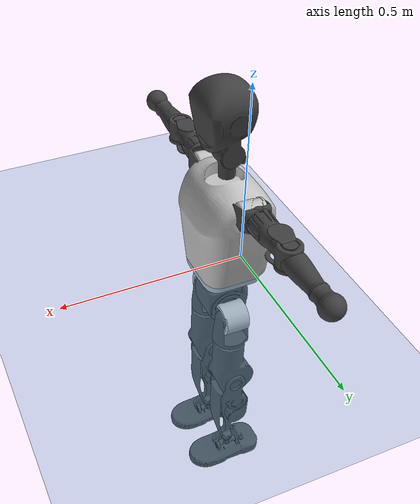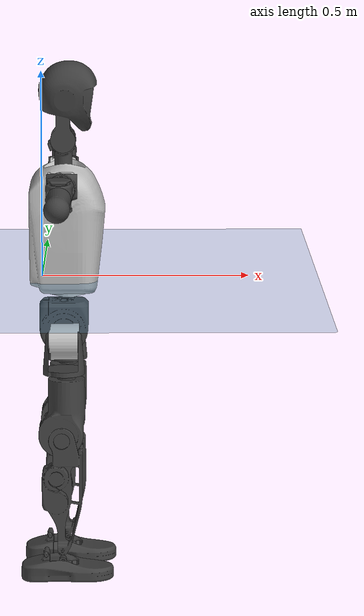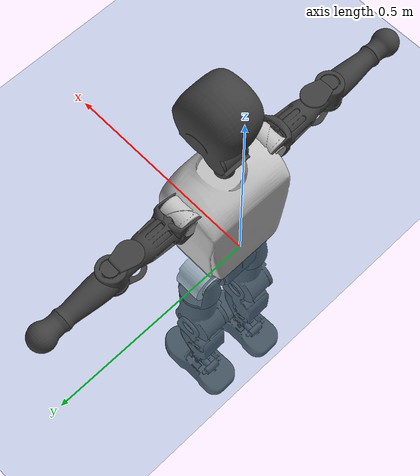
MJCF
<mujoco model="T1">
  <compiler angle="radian" assetdir="assets" balanceinertia="true" inertiafromgeom="false"/>

  <option timestep="0.005" density="1.2" viscosity="2e-05"/>

  <size nkey="1"/>

  <visual>
    <quality shadowsize="8192"/>
    <map shadowclip="0.5"/>
  </visual>

  <default>
    <default class="/">
      <joint armature="0.01" damping="0.01" frictionloss="0.1"/>
      <geom contype="0" conaffinity="0" group="1" solref="-1000 -80"/>
      <site size="0.01 0.005 0.005" group="5"/>
      <general forcelimited="true" biastype="affine" gainprm="25" biasprm="0 -25 -0.6"/>
      <default class="t1">
        <geom rgba="0.25 0.25 0.25 1"/>
        <default class="visual">
          <geom type="mesh" group="2"/>
        </default>
        <default class="collision">
          <geom group="3"/>
        </default>
        <default class="foot">
          <geom size="0.1115 0.05 0.015" type="box" condim="6" group="4" priority="1" solimp="0.015 1 0.015"/>
        </default>
        <default class="reward_collision_sphere">
          <geom group="5" rgba="1 0 0 1"/>
        </default>
      </default>
    </default>
  </default>

  <asset>
    <texture type="skybox" colorspace="auto" name="//unnamed_texture_0" builtin="gradient" rgb1="0.95 0.95 0.95" rgb2="0.95 0.95 0.95" width="100" height="600"/>
    <texture type="2d" colorspace="auto" name="texplane" builtin="checker" rgb1="0.345 0.575 0.748" rgb2="0.345 0.575 0.748" markrgb="1 1 1" width="512" height="512"/>
    <material name="MatPlane" class="/" texture="texplane" texuniform="true" texrepeat="2 2" specular="0.9"/>
    <mesh name="Trunk" class="/" file="Trunk.stl"/>
    <mesh name="H1" class="/" file="H1.stl"/>
    <mesh name="H2" class="/" file="H2.stl"/>
    <mesh name="AL1" class="/" file="AL1.stl"/>
    <mesh name="AL2" class="/" file="AL2.stl"/>
    <mesh name="AL3" class="/" file="AL3.stl"/>
    <mesh name="left_hand_link" class="/" file="left_hand_link.stl"/>
    <mesh name="AR1" class="/" file="AR1.stl"/>
    <mesh name="AR2" class="/" file="AR2.stl"/>
    <mesh name="AR3" class="/" file="AR3.stl"/>
    <mesh name="right_hand_link" class="/" file="right_hand_link.stl"/>
    <mesh name="Waist" class="/" file="Waist.stl"/>
    <mesh name="Hip_Pitch_Left" class="/" file="Hip_Pitch_Left.stl"/>
    <mesh name="Hip_Roll_Left" class="/" file="Hip_Roll_Left.stl"/>
    <mesh name="Hip_Yaw_Left" class="/" file="Hip_Yaw_Left.stl"/>
    <mesh name="Shank_Left" class="/" file="Shank_Left.stl"/>
    <mesh name="Ankle_Cross_Left" class="/" file="Ankle_Cross_Left.stl"/>
    <mesh name="left_foot_link" class="/" file="left_foot_link.stl"/>
    <mesh name="Hip_Pitch_Right" class="/" file="Hip_Pitch_Right.stl"/>
    <mesh name="Hip_Roll_Right" class="/" file="Hip_Roll_Right.stl"/>
    <mesh name="Hip_Yaw_Right" class="/" file="Hip_Yaw_Right.stl"/>
    <mesh name="Shank_Right" class="/" file="Shank_Right.stl"/>
    <mesh name="Ankle_Cross_Right" class="/" file="Ankle_Cross_Right.stl"/>
    <mesh name="right_foot_link" class="/" file="right_foot_link.stl"/>
  </asset>

  <worldbody>
    <geom name="floor" class="/" size="100 100 0.125" type="plane" group="0" material="MatPlane"/>
    <light name="toplight_shadow" class="/" pos="0 0 5" dir="0.0990148 0.0990148 -0.990148" type="directional" ambient="0.04 0.04 0.04" diffuse="0.55 0.55 0.55" specular="0.12 0.12 0.12"/>
    <light name="toplight_fill" class="/" pos="0 0 5" dir="0.0990148 0.0990148 -0.990148" type="directional" castshadow="false" ambient="0.04 0.04 0.04" diffuse="0.3 0.3 0.3" specular="0.08 0.08 0.08"/>
    <body name="trunk" childclass="t1" pos="-0.000198598 -0.000823638 0.00280518" quat="1 1.74949e-06 -4.54333e-05 3.59179e-05">
      <inertial pos="0.048264 -0.00366131 0.115034" quat="0.999936 0.00222042 -0.0036526 0.0105038" mass="7.76926" diaginertia="0.0430152 0.0110546 0.0896894"/>
      <joint name="//unnamed_joint_0" type="free" armature="0" damping="0" frictionloss="0"/>
      <geom name="//unnamed_geom_1" class="visual" rgba="0.76 0.76 0.76 1" mesh="Trunk"/>
      <geom name="//unnamed_geom_2" class="collision" size="0.0660982 0.0881309 0.132196" pos="0.0514763 0 0.132261" type="box"/>
      <geom name="//unnamed_geom_3" class="reward_collision_sphere" size="0.101351" pos="0.0514763 0 0.110217"/>
      <geom name="//unnamed_geom_4" class="reward_collision_sphere" size="0.0132196" pos="0.0514763 0.0581244 0"/>
      <geom name="//unnamed_geom_5" class="reward_collision_sphere" size="0.0132196" pos="0.0514763 -0.0581244 0"/>
      <geom name="//unnamed_geom_6" class="reward_collision_sphere" size="0.0132196" pos="0.0514763 0.0731683 0.198391"/>
      <geom name="//unnamed_geom_7" class="reward_collision_sphere" size="0.0132196" pos="0.0514763 -0.0731683 0.198391"/>
      <site name="imu" pos="0.000460576 0.0136547 -0.00598622" size="0.00881309"/>
      <camera name="track" pos="0 -1.36763 0" quat="0.707107 0.707107 0 0" mode="trackcom"/>
      <camera name="ego_camera" pos="0.104668 0 0.462912" quat="-0.5 -0.5 0.5 0.5"/>
      <body name="H1" pos="0.0528059 -0.00286752 0.267124" quat="0.999999 -0.000349629 0.000399949 -0.0012606">
        <inertial pos="-0.0017944 -0.000142355 0.0644791" quat="0.764653 -0.0124956 0.00354745 0.644312" mass="0.29398" diaginertia="0.000109369 3.41407e-05 0.000243459"/>
        <joint name="AAHead_yaw" pos="0 0 0" axis="-0.000568578 -0.00389533 0.999992" range="-1.54499 1.61502" armature="0.00895066" damping="0" frictionloss="0.0769575"/>
        <geom name="//unnamed_geom_8" class="visual" mesh="H1"/>
        <body name="H2" pos="-0.000590692 -0.000655695 0.0663981" quat="1 0.000887746 0.000308325 5.57881e-05">
          <inertial pos="0.00442439 0.00278517 0.111446" quat="0.988188 0.0982734 -0.0793612 -0.0867627" mass="0.43164" diaginertia="0.000944194 0.000283965 0.00279157"/>
          <joint name="Head_pitch" pos="0 0 0" axis="-0.00489709 -0.999908 -0.012611" range="-1.23333 0.361691" armature="0.00879346" damping="0.0034394" frictionloss="0.0890667"/>
          <geom name="//unnamed_geom_9" class="visual" mesh="H2"/>
          <geom name="//unnamed_geom_10" class="collision" size="0.0705047" pos="0.00857938 0 0.121239"/>
          <geom name="//unnamed_geom_11" class="reward_collision_sphere" size="0.0793178" pos="0.0171588 0 0.110217"/>
        </body>
      </body>
      <body name="AL1" pos="0.0493918 0.0735027 0.239181" quat="1 0.000121685 0.000478539 -0.000163326">
        <inertial pos="-0.000377157 0.0283034 -0.000203232" quat="0.514018 0.488307 -0.505813 0.491421" mass="0.346967" diaginertia="0.000600092 0.000186916 0.000461532"/>
        <joint name="Left_Shoulder_Pitch" pos="0 0 0" axis="0.00348877 0.999918 0.0123183" range="-3.25861 1.22187" armature="0.00749511" damping="0" frictionloss="0.0810041"/>
        <geom name="//unnamed_geom_12" class="visual" rgba="0.76 0.76 0.76 1" mesh="AL1"/>
        <body name="AL2" pos="0.0002762 0.0327137 -0.000333309" quat="0.999999 -0.000107709 -0.000778152 -0.00098047">
          <inertial pos="0.0054612 0.0280358 -0.000284727" quat="0.49035 0.507527 -0.495713 0.506203" mass="0.105811" diaginertia="0.000179204 5.04546e-05 0.000274484"/>
          <joint name="Left_Shoulder_Roll" pos="0 0 0" axis="-0.999992 -0.00148086 -0.00369487" range="-1.57302 1.75193" armature="0.00996775" damping="0.0211072" frictionloss="0.0928004"/>
          <geom name="//unnamed_geom_13" class="visual" mesh="AL2"/>
          <body name="AL3" pos="-0.00163061 0.040119 0.000643386" quat="0.999999 0.0011128 0.0002258 0.000699797">
            <inertial pos="0.00227125 0.0575263 0.0013038" quat="0.703537 0.710601 0.000228342 0.00902789" mass="0.714744" diaginertia="0.00612517 0.00200643 0.00102852"/>
            <joint name="Left_Elbow_Pitch" pos="0 0 0" axis="0.000379591 -1 -0.000663886" stiffness="0.00525857" range="-2.26182 2.313" armature="0.0100283" damping="0.00959472" frictionloss="0.0978042"/>
            <geom name="//unnamed_geom_14" class="visual" mesh="AL3"/>
            <geom name="//unnamed_geom_15" class="collision" size="0.0264393 0.0660982" pos="0 0.0341908 0" quat="0.707105 0.707108 0 0" type="cylinder"/>
            <geom name="//unnamed_geom_16" class="reward_collision_sphere" size="0.0317271"/>
            <body name="left_hand_link" pos="-0.00172169 0.101798 -0.00165703" quat="0.999999 -0.000727294 -0.000571549 -0.000637173">
              <inertial pos="0.00128478 0.0777308 -2.85831e-05" quat="0.708766 0.705443 0.000623584 0.00110089" mass="0.218706" diaginertia="0.00391032 0.00125971 0.000337898"/>
              <joint name="Left_Elbow_Yaw" pos="0 0 0" axis="-0.0120319 -0.00914081 0.999886" stiffness="0.0018309" range="-2.47872 0.0446667" armature="0.00766971" damping="1.96994e-05" frictionloss="0.0969754"/>
              <geom name="//unnamed_geom_17" class="visual" mesh="left_hand_link"/>
              <geom name="//unnamed_geom_18" class="collision" size="0.0264393 0.0771145" pos="0 0.0888961 0" quat="0.707105 0.707108 0 0" type="cylinder"/>
              <geom name="//unnamed_geom_19" class="reward_collision_sphere" size="0.0440654"/>
              <geom name="//unnamed_geom_20" class="reward_collision_sphere" size="0.0308458" pos="0 0.0752198 0"/>
              <geom name="//unnamed_geom_21" class="reward_collision_sphere" size="0.0308458" pos="0 0.14702 0"/>
            </body>
          </body>
        </body>
      </body>
      <body name="AR1" pos="0.0492303 -0.0688534 0.238315" quat="1 -1.21899e-05 0.000466951 -2.01342e-05">
        <inertial pos="-0.000624369 -0.0337029 -0.000113742" quat="0.504358 0.495759 -0.503956 0.495857" mass="0.373083" diaginertia="0.000634929 0.000188927 0.00047637"/>
        <joint name="Right_Shoulder_Pitch" pos="0 0 0" axis="-0.00998889 -0.999939 0.00469701" range="-1.22778 3.3604" armature="0.00913934" damping="0.0147108" frictionloss="0.0775235"/>
        <geom name="//unnamed_geom_22" class="visual" rgba="0.76 0.76 0.76 1" mesh="AR1"/>
        <body name="AR2" pos="0.00177367 -0.0339085 -0.000435383" quat="1 2.06362e-05 -8.4792e-05 -8.60608e-05">
          <inertial pos="0.0061421 -0.025785 -0.000897488" quat="0.512799 0.488167 -0.512704 0.485659" mass="0.116503" diaginertia="0.000191296 5.19379e-05 0.000298355"/>
          <joint name="Right_Shoulder_Roll" pos="0 0 0" axis="-0.99997 0.00747285 -0.00225813" range="-1.72649 1.62713" armature="0.00923236" damping="0" frictionloss="0.100512"/>
          <geom name="//unnamed_geom_23" class="visual" mesh="AR2"/>
          <body name="AR3" pos="-0.00297042 -0.0422982 -0.00304641" quat="1 0.000644507 0.000312052 -0.000551518">
            <inertial pos="-0.000703577 -0.0556529 -0.00045753" quat="0.705073 0.709105 -0.0057101 0.00306812" mass="0.737742" diaginertia="0.00609937 0.00195737 0.00102681"/>
            <joint name="Right_Elbow_Pitch" pos="0 0 0" axis="-0.000493804 0.999999 -0.00144414" range="-2.32786 2.21337" armature="0.00899069" damping="0.0111877" frictionloss="0.0878051"/>
            <geom name="//unnamed_geom_24" class="visual" mesh="AR3"/>
            <geom name="//unnamed_geom_25" class="collision" size="0.0264393 0.0660982" pos="0 -0.0341908 0" quat="0.707105 0.707108 0 0" type="cylinder"/>
            <geom name="//unnamed_geom_26" class="reward_collision_sphere" size="0.0317271"/>
            <body name="right_hand_link" pos="-0.000876351 -0.100076 0.00100176" quat="1 -6.54501e-05 4.58006e-06 -7.67121e-05">
              <inertial pos="0.000212711 -0.0746435 -0.00128667" quat="0.702844 0.711243 0.0101052 -0.00652486" mass="0.210948" diaginertia="0.00362259 0.00119216 0.000340248"/>
              <joint name="Right_Elbow_Yaw" pos="0 0 0" axis="0.0039977 -0.0158897 0.999866" stiffness="0.00160846" range="0.0181569 2.49269" armature="0.00914814" damping="0.00766773" frictionloss="0.0921923"/>
              <geom name="//unnamed_geom_27" class="visual" mesh="right_hand_link"/>
              <geom name="//unnamed_geom_28" class="collision" size="0.0264393 0.0771145" pos="0 -0.0888961 0" quat="0.707105 0.707108 0 0" type="cylinder"/>
              <geom name="//unnamed_geom_29" class="reward_collision_sphere" size="0.0440654"/>
              <geom name="//unnamed_geom_30" class="reward_collision_sphere" size="0.0308458" pos="0 -0.0752198 0"/>
              <geom name="//unnamed_geom_31" class="reward_collision_sphere" size="0.0308458" pos="0 -0.14702 0"/>
            </body>
          </body>
        </body>
      </body>
      <body name="Waist" pos="0.0522282 -0.00237998 -0.127588" quat="0.999999 -0.000661088 -0.00156232 2.91265e-05">
        <inertial pos="0.000473918 -0.00383721 0.00709382" quat="0.983712 6.8235e-05 -0.179734 0.00264255" mass="1.78645" diaginertia="0.00246968 0.000774799 0.00745218"/>
        <joint name="Waist" pos="0 0 0" axis="0.0135246 -0.00408669 0.9999" stiffness="0.00717915" range="-1.57657 1.56497" armature="0.00893215" damping="0" frictionloss="0.0773151"/>
        <geom name="//unnamed_geom_32" class="visual" mesh="Waist"/>
        <body name="Hip_Pitch_Left" pos="0.00315627 0.0705503 0.00251351" quat="0.999999 0.0013041 -0.000919871 0.000253903">
          <inertial pos="0.000361264 -0.00554537 -0.0198131" quat="0.976933 0.213315 0.00938155 0.00334946" mass="0.696447" diaginertia="0.000826828 0.000219204 0.00194966"/>
          <joint name="Left_Hip_Pitch" pos="0 0 0" axis="-0.00297932 0.999995 0.000623171" range="-1.77826 1.57856" armature="0.00874662" damping="0.00630678" frictionloss="0.0928679"/>
          <geom name="//unnamed_geom_33" class="visual" rgba="0.76 0.76 0.76 1" mesh="Hip_Pitch_Left"/>
          <body name="Hip_Roll_Left" pos="0.00247213 0.00235011 -0.0199092" quat="1 -7.67996e-05 -0.000704218 0.00055723">
            <inertial pos="-0.0015174 -0.00316503 -0.0594064" quat="0.701507 -0.0038994 -0.0125094 0.712542" mass="0.259151" diaginertia="0.000774115 0.000221748 0.000824195"/>
            <joint name="Left_Hip_Roll" pos="0 0 0" axis="-0.999961 -0.00119556 0.00875479" stiffness="0.000276306" range="-1.62358 0.253119" armature="0.00989932" damping="0.00726887" frictionloss="0.0918233"/>
            <geom name="//unnamed_geom_34" class="visual" mesh="Hip_Roll_Left"/>
            <geom name="//unnamed_geom_35" class="reward_collision_sphere" size="0.048472"/>
            <body name="Hip_Yaw_Left" pos="0.0014802 0.00184892 -0.0880922" quat="0.999999 0.000406857 -0.000100257 0.00133803">
              <inertial pos="-0.00674386 0.00015786 -0.100497" quat="0.700075 -0.03258 -0.0323151 0.712593" mass="1.49911" diaginertia="0.0116092 0.00379291 0.0043829"/>
              <joint name="Left_Hip_Yaw" pos="0 0 0" axis="0.000620304 0.00685111 -0.999976" stiffness="0.000455029" range="-1.0146 0.957889" armature="0.00834251" damping="0.0114133" frictionloss="0.0959245"/>
              <geom name="//unnamed_geom_36" class="visual" mesh="Hip_Yaw_Left"/>
              <geom name="//unnamed_geom_37" class="collision" size="0.0440654 0.0705047" type="cylinder"/>
              <body name="Shank_Left" pos="-0.00895411 0.00169534 -0.150652" quat="1 -0.000139054 0.000115662 -5.75355e-05">
                <inertial pos="-0.00233414 -0.00269188 -0.137779" quat="0.997757 -0.00026378 -0.0215357 0.0633859" mass="1.15227" diaginertia="0.0159607 0.00496718 0.00297942"/>
                <joint name="Left_Knee_Pitch" pos="0 0 0" axis="0.00611919 0.999963 0.00612219" stiffness="0.00482705" range="0.0418956 2.37079" armature="0.00899569" damping="0.00797123" frictionloss="0.0836105"/>
                <geom name="//unnamed_geom_38" class="visual" mesh="Shank_Left"/>
                <geom name="//unnamed_geom_39" class="collision" size="0.0440654 0.0660982" pos="0 0 -0.132261" type="cylinder"/>
                <geom name="//unnamed_geom_40" class="reward_collision_sphere" size="0.0572851"/>
                <body name="Ankle_Cross_Left" pos="0.000490722 0.000669358 -0.306821" quat="0.999999 -0.00021035 0.000356272 -0.00116486">
                  <inertial pos="-0.000309773 0.000169383 -0.0109029" quat="0.443472 0.549416 0.552045 0.443532" mass="0.0511929" diaginertia="1.36542e-05 3.73949e-06 1.8284e-05"/>
                  <joint name="Left_Ankle_Pitch" pos="0 0 0" axis="0.0121318 0.99992 -0.0036507" stiffness="0.00617459" range="-0.879532 0.360557" armature="0.00873982" damping="0.0188213" frictionloss="0.0760198"/>
                  <geom name="//unnamed_geom_41" class="visual" mesh="Ankle_Cross_Left"/>
                  <body name="left_foot_link" pos="-0.000429171 0.00421652 -0.0143853" quat="1 5.10338e-05 0.000383279 -0.00020918">
                    <inertial pos="0.000476875 0.0028365 -0.0104123" quat="-0.00752652 0.613613 -0.00484529 0.789556" mass="0.454398" diaginertia="0.00128405 0.000366706 0.00363901"/>
                    <joint name="Left_Ankle_Roll" pos="0 0 0" axis="-0.999888 0.0081283 0.0125368" range="-0.455533 0.489704" armature="0.00962033" damping="0.00922617" frictionloss="0.0913364"/>
                    <geom name="//unnamed_geom_42" class="visual" mesh="left_foot_link"/>
                    <geom name="left_foot" class="foot" size="0.105561 0.0517886 0.0134062" pos="0.00857938 0 -0.0165326"/>
                    <geom name="//unnamed_geom_44" class="reward_collision_sphere" size="0.0458281" pos="0.00857938 0 -0.0165326"/>
                    <geom name="//unnamed_geom_45" class="reward_collision_sphere" size="0.0264393" pos="0.0815041 -0.0157278 -0.0165326"/>
                    <geom name="//unnamed_geom_46" class="reward_collision_sphere" size="0.0264393" pos="-0.0600557 -0.0157278 -0.0165326"/>
                    <site name="left_foot" class="foot" pos="0.00857938 0 -0.0165326" size="0.00881309"/>
                  </body>
                </body>
              </body>
            </body>
          </body>
        </body>
        <body name="Hip_Pitch_Right" pos="0.00269354 -0.0732488 -0.00247342" quat="1 0.000137441 -0.000153555 -0.000210286">
          <inertial pos="-0.0022678 0.00442548 -0.0198883" quat="0.97323 -0.229683 0.00416197 -0.00714682" mass="0.67269" diaginertia="0.000815264 0.000214192 0.00198806"/>
          <joint name="Right_Hip_Pitch" pos="0 0 0" axis="-0.00427212 -0.99999 -0.00114697" range="-1.58188 1.75001" armature="0.00952314" damping="0.0022345" frictionloss="0.0799853"/>
          <geom name="//unnamed_geom_47" class="visual" rgba="0.76 0.76 0.76 1" mesh="Hip_Pitch_Right"/>
          <body name="Hip_Roll_Right" pos="-0.000475269 -0.00232289 -0.0216079" quat="1 -0.00040313 3.79864e-05 0.000279868">
            <inertial pos="0.00125443 -0.00284453 -0.0619221" quat="0.697792 -0.00440998 -0.00410817 0.716275" mass="0.254817" diaginertia="0.000781592 0.000221748 0.000820376"/>
            <joint name="Right_Hip_Roll" pos="0 0 0" axis="-1 -5.34833e-05 -0.000110698" range="-0.182103 1.57271" armature="0.00861033" damping="0.00804149" frictionloss="0.0757244"/>
            <geom name="//unnamed_geom_48" class="visual" mesh="Hip_Roll_Right"/>
            <geom name="//unnamed_geom_49" class="reward_collision_sphere" size="0.048472"/>
            <body name="Hip_Yaw_Right" pos="0.00340937 0.000322415 -0.0884893" quat="0.999999 -0.00126586 0.000415292 -0.000722768">
              <inertial pos="-0.0063258 -0.00229018 -0.0968099" quat="0.714694 -0.027459 -0.034886 0.698027" mass="1.49343" diaginertia="0.0116586 0.00369403 0.00412661"/>
              <joint name="Right_Hip_Yaw" pos="0 0 0" axis="0.0158374 -0.00297658 -0.99987" range="-1.05037 1.06137" armature="0.00908549" damping="0.0134611" frictionloss="0.0874178"/>
              <geom name="//unnamed_geom_50" class="visual" mesh="Hip_Yaw_Right"/>
              <geom name="//unnamed_geom_51" class="collision" size="0.0440654 0.0705047" type="cylinder"/>
              <body name="Shank_Right" pos="-0.012214 0.00100807 -0.147706" quat="1 -0.000154936 8.43275e-05 9.07161e-05">
                <inertial pos="-0.00594829 0.000102678 -0.136973" quat="0.999302 -0.00249224 -0.0206621 -0.0310152" mass="1.17788" diaginertia="0.0154444 0.00498619 0.00308853"/>
                <joint name="Right_Knee_Pitch" pos="0 0 0" axis="0.000896248 -1 -0.000301341" range="-2.30201 0.0214336" armature="0.00876071" damping="0.00911438" frictionloss="0.0888728"/>
                <geom name="//unnamed_geom_52" class="visual" mesh="Shank_Right"/>
                <geom name="//unnamed_geom_53" class="collision" size="0.0440654 0.0660982" pos="0 0 -0.132261" type="cylinder"/>
                <geom name="//unnamed_geom_54" class="reward_collision_sphere" size="0.0572851"/>
                <body name="Ankle_Cross_Right" pos="3.87767e-05 0.000135691 -0.308279" quat="0.999999 0.000208114 0.00135176 0.000283196">
                  <inertial pos="-0.0028592 0.00113366 -0.0112691" quat="0.450309 0.55523 0.542928 0.440649" mass="0.0480514" diaginertia="1.2704e-05 3.83703e-06 1.7305e-05"/>
                  <joint name="Right_Ankle_Pitch" pos="0 0 0" axis="0.00357861 -0.999909 0.0130243" range="-0.293791 0.88668" armature="0.00867847" damping="0" frictionloss="0.0756998"/>
                  <geom name="//unnamed_geom_55" class="visual" mesh="Ankle_Cross_Right"/>
                  <body name="right_foot_link" pos="0.0013933 -0.00193585 -0.0124363" quat="1 -0.000312732 -0.000425472 7.79954e-05">
                    <inertial pos="-0.00190879 -0.00304972 -0.0102727" quat="0.00877234 0.613923 -0.0059257 0.789295" mass="0.472934" diaginertia="0.00126037 0.000357747 0.00344733"/>
                    <joint name="Right_Ankle_Roll" pos="0 0 0" axis="-1 0.000327183 -7.10266e-05" stiffness="0.00583124" range="-0.425526 0.423642" armature="0.00963292" damping="0.0183518" frictionloss="0.0885865"/>
                    <geom name="//unnamed_geom_56" class="visual" mesh="right_foot_link"/>
                    <geom name="right_foot" class="foot" size="0.100116 0.0459416 0.0130996" pos="0.00857938 0 -0.0165326"/>
                    <geom name="//unnamed_geom_58" class="reward_collision_sphere" size="0.0352523"/>
                    <geom name="//unnamed_geom_59" class="reward_collision_sphere" size="0.0264393" pos="0.00857938 0 -0.0165326"/>
                    <geom name="//unnamed_geom_60" class="reward_collision_sphere" size="0.0264393" pos="0.0815041 0.0157278 -0.0165326"/>
                    <geom name="//unnamed_geom_61" class="reward_collision_sphere" size="0.0264393" pos="-0.0600557 0.0157278 -0.0165326"/>
                    <site name="right_foot" class="foot" pos="0.00857938 0 -0.0165326" size="0.00881309"/>
                  </body>
                </body>
              </body>
            </body>
          </body>
        </body>
      </body>
    </body>
  </worldbody>

  <contact>
    <pair class="/" geom1="floor" geom2="left_foot" name="//unnamed_contact_0"/>
    <pair class="/" geom1="floor" geom2="right_foot" name="//unnamed_contact_1"/>
  </contact>

  <actuator>
    <general name="AAHead_yaw" class="/" joint="AAHead_yaw" forcerange="-6.79735 6.79735" gainprm="21.7468" biasprm="0 -21.7468 -0.482601"/>
    <general name="Head_pitch" class="/" joint="Head_pitch" forcerange="-6.80688 6.80688" gainprm="21.7468" biasprm="0 -21.7468 -0.482601"/>
    <general name="Left_Shoulder_Pitch" class="/" joint="Left_Shoulder_Pitch" forcerange="-15.0692 15.0692" gainprm="21.7468" biasprm="0 -21.7468 -0.482601"/>
    <general name="Left_Shoulder_Roll" class="/" joint="Left_Shoulder_Roll" forcerange="-15.2241 15.2241" gainprm="21.7468" biasprm="0 -21.7468 -0.482601"/>
    <general name="Left_Elbow_Pitch" class="/" joint="Left_Elbow_Pitch" forcerange="-17.4169 17.4169" gainprm="21.7468" biasprm="0 -21.7468 -0.482601"/>
    <general name="Left_Elbow_Yaw" class="/" joint="Left_Elbow_Yaw" forcerange="-14.3836 14.3836" gainprm="21.7468" biasprm="0 -21.7468 -0.482601"/>
    <general name="Right_Shoulder_Pitch" class="/" joint="Right_Shoulder_Pitch" forcerange="-14.5599 14.5599" gainprm="21.7468" biasprm="0 -21.7468 -0.482601"/>
    <general name="Right_Shoulder_Roll" class="/" joint="Right_Shoulder_Roll" forcerange="-15.7068 15.7068" gainprm="21.7468" biasprm="0 -21.7468 -0.482601"/>
    <general name="Right_Elbow_Pitch" class="/" joint="Right_Elbow_Pitch" forcerange="-17.3662 17.3662" gainprm="21.7468" biasprm="0 -21.7468 -0.482601"/>
    <general name="Right_Elbow_Yaw" class="/" joint="Right_Elbow_Yaw" forcerange="-16.5665 16.5665" gainprm="21.7468" biasprm="0 -21.7468 -0.482601"/>
    <general name="Waist" class="/" joint="Waist" forcerange="-27.2242 27.2242" gainprm="21.7468" biasprm="0 -21.7468 -0.482601"/>
    <general name="Left_Hip_Pitch" class="/" joint="Left_Hip_Pitch" forcerange="-38.6107 38.6107" gainprm="21.7468" biasprm="0 -21.7468 -0.482601"/>
    <general name="Left_Hip_Roll" class="/" joint="Left_Hip_Roll" forcerange="-29.1092 29.1092" gainprm="21.7468" biasprm="0 -21.7468 -0.482601"/>
    <general name="Left_Hip_Yaw" class="/" joint="Left_Hip_Yaw" forcerange="-24.4464 24.4464" gainprm="21.7468" biasprm="0 -21.7468 -0.482601"/>
    <general name="Left_Knee_Pitch" class="/" joint="Left_Knee_Pitch" forcerange="-58.1397 58.1397" gainprm="21.7468" biasprm="0 -21.7468 -0.482601"/>
    <general name="Left_Ankle_Pitch" class="/" joint="Left_Ankle_Pitch" forcerange="-16.5744 16.5744" gainprm="21.7468" biasprm="0 -21.7468 -0.482601"/>
    <general name="Left_Ankle_Roll" class="/" joint="Left_Ankle_Roll" forcerange="-13.5423 13.5423" gainprm="21.7468" biasprm="0 -21.7468 -0.482601"/>
    <general name="Right_Hip_Pitch" class="/" joint="Right_Hip_Pitch" forcerange="-39.0924 39.0924" gainprm="21.7468" biasprm="0 -21.7468 -0.482601"/>
    <general name="Right_Hip_Roll" class="/" joint="Right_Hip_Roll" forcerange="-24.204 24.204" gainprm="21.7468" biasprm="0 -21.7468 -0.482601"/>
    <general name="Right_Hip_Yaw" class="/" joint="Right_Hip_Yaw" forcerange="-24.3215 24.3215" gainprm="21.7468" biasprm="0 -21.7468 -0.482601"/>
    <general name="Right_Knee_Pitch" class="/" joint="Right_Knee_Pitch" forcerange="-58.3366 58.3366" gainprm="21.7468" biasprm="0 -21.7468 -0.482601"/>
    <general name="Right_Ankle_Pitch" class="/" joint="Right_Ankle_Pitch" forcerange="-19.2414 19.2414" gainprm="21.7468" biasprm="0 -21.7468 -0.482601"/>
    <general name="Right_Ankle_Roll" class="/" joint="Right_Ankle_Roll" forcerange="-11.9983 11.9983" gainprm="21.7468" biasprm="0 -21.7468 -0.482601"/>
  </actuator>

  <sensor>
    <gyro site="imu" name="imu_angular_velocity"/>
    <velocimeter site="imu" name="imu_linear_velocity"/>
    <framelinvel objtype="site" objname="left_foot" name="left_foot_global_linear_velocity"/>
    <framelinvel objtype="site" objname="right_foot" name="right_foot_global_linear_velocity"/>
  </sensor>

  <keyframe>
    <key name="home" qpos="0 0 0.6385 1 0 0 0 0 0 0 1.4 0 -0.4 0 -1.4 0 0.4 0 -0.4 0 0 0.8 -0.4 0 0.4 0 0 -0.8 0.4 0"/>
  </keyframe>
</mujoco>
